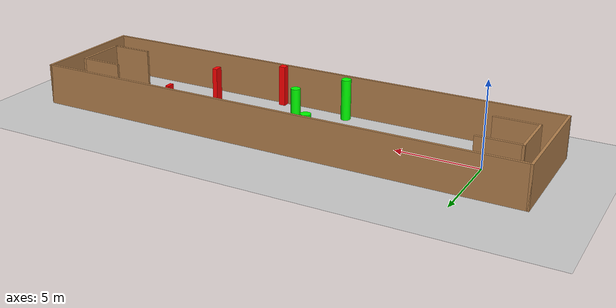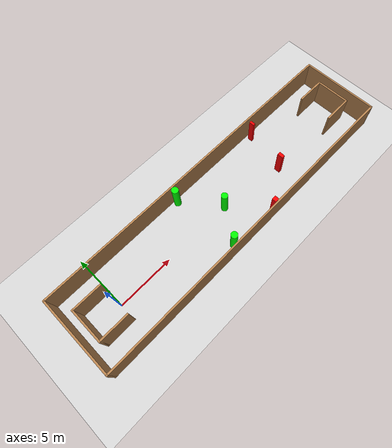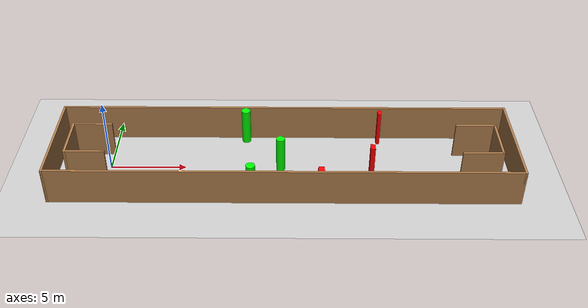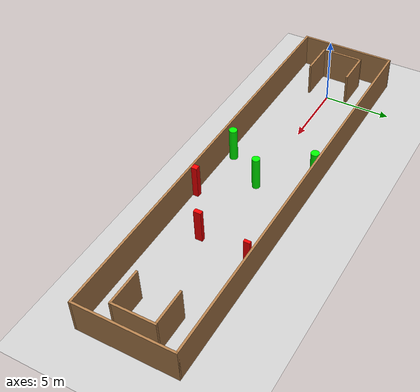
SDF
<sdf version="1.7">
 <world name="default">
  <light name="sun" type="directional">
   <pose>0 0 10 0 -0 0</pose>
   <diffuse>0.8 0.8 0.8 1</diffuse>
   <specular>0.2 0.2 0.2 1</specular>
   <attenuation>
    <range>1000</range>
    <constant>0.9</constant>
    <linear>0.01</linear>
    <quadratic>0.001</quadratic>
   </attenuation>
   <direction>-0.5 0.1 -0.9</direction>
   <spot><inner_angle>0</inner_angle><outer_angle>0</outer_angle><falloff>0</falloff></spot>
  </light>
  <model name="ground_plane">
   <static>1</static>
   <link name="link">
    <collision name="collision">
     <geometry><plane><normal>0 0 1</normal><size>100 100</size></plane></geometry>
     <surface>
      <contact><collide_bitmask>65535</collide_bitmask></contact>
      <friction><ode><mu>100</mu><mu2>50</mu2></ode></friction>
     </surface>
    </collision>
    <visual name="visual">
     <cast_shadows>0</cast_shadows>
     <geometry><plane><normal>0 0 1</normal><size>100 100</size></plane></geometry>
     <material>
      <script><uri>file://media/materials/scripts/gazebo.material</uri><name>Gazebo/Grey</name></script>
     </material>
    </visual>
   </link>
  </model>
  <gravity>0 0 -9.8</gravity>
  <magnetic_field>6e-06 2.3e-05 -4.2e-05</magnetic_field>
  <atmosphere type="adiabatic"/>
  <physics type="ode">
   <max_step_size>0.001</max_step_size>
   <real_time_factor>1</real_time_factor>
   <real_time_update_rate>1000</real_time_update_rate>
  </physics>
  <scene><ambient>0.4 0.4 0.4 1</ambient><background>0.7 0.7 0.7 1</background><shadows>1</shadows></scene>
  <spherical_coordinates>
   <surface_model>EARTH_WGS84</surface_model>
   <latitude_deg>0</latitude_deg>
   <longitude_deg>0</longitude_deg>
   <elevation>0</elevation>
   <heading_deg>0</heading_deg>
  </spherical_coordinates>
  <model name="my_base_walls">
   <link name="Wall_0">
    <collision name="Wall_0_Collision">
     <geometry><box><size>7.15 0.15 2.5</size></box></geometry>
     <pose>0 0 1.25 0 -0 0</pose>
    </collision>
    <visual name="Wall_0_Visual">
     <pose>0 0 1.25 0 -0 0</pose>
     <geometry><box><size>7.15 0.15 2.5</size></box></geometry>
     <material>
      <script><uri>file://media/materials/scripts/gazebo.material</uri><name>Gazebo/Wood</name></script>
      <ambient>1 1 1 1</ambient>
     </material>
     <meta><layer>0</layer></meta>
    </visual>
    <pose>-15 0 0 0 -0 1.5708</pose>
   </link>
   <link name="Wall_10">
    <collision name="Wall_10_Collision">
     <geometry><box><size>2.65 0.15 2.5</size></box></geometry>
     <pose>0 0 1.25 0 -0 0</pose>
    </collision>
    <visual name="Wall_10_Visual">
     <pose>0 0 1.25 0 -0 0</pose>
     <geometry><box><size>2.65 0.15 2.5</size></box></geometry>
     <material>
      <script><uri>file://media/materials/scripts/gazebo.material</uri><name>Gazebo/Wood</name></script>
      <ambient>1 1 1 1</ambient>
     </material>
     <meta><layer>0</layer></meta>
    </visual>
    <pose>-12.75 -1.5 0 0 -0 0</pose>
   </link>
   <link name="Wall_12">
    <collision name="Wall_12_Collision">
     <geometry><box><size>2.65 0.15 2.5</size></box></geometry>
     <pose>0 0 1.25 0 -0 0</pose>
    </collision>
    <visual name="Wall_12_Visual">
     <pose>0 0 1.25 0 -0 0</pose>
     <geometry><box><size>2.65 0.15 2.5</size></box></geometry>
     <material>
      <script><uri>file://media/materials/scripts/gazebo.material</uri><name>Gazebo/Wood</name></script>
      <ambient>1 1 1 1</ambient>
     </material>
     <meta><layer>0</layer></meta>
    </visual>
    <pose>-12.75 1.5 0 0 -0 0</pose>
   </link>
   <link name="Wall_14">
    <collision name="Wall_14_Collision">
     <geometry><box><size>3.15 0.15 2.5</size></box></geometry>
     <pose>0 0 1.25 0 -0 0</pose>
    </collision>
    <visual name="Wall_14_Visual">
     <pose>0 0 1.25 0 -0 0</pose>
     <geometry><box><size>3.15 0.15 2.5</size></box></geometry>
     <material>
      <script><uri>file://media/materials/scripts/gazebo.material</uri><name>Gazebo/Wood</name></script>
      <ambient>1 1 1 1</ambient>
     </material>
     <meta><layer>0</layer></meta>
    </visual>
    <pose>14 0 0 0 -0 -1.5708</pose>
   </link>
   <link name="Wall_15">
    <collision name="Wall_15_Collision">
     <geometry><box><size>2.65 0.15 2.5</size></box></geometry>
     <pose>0 0 1.25 0 -0 0</pose>
    </collision>
    <visual name="Wall_15_Visual">
     <pose>0 0 1.25 0 -0 0</pose>
     <geometry><box><size>2.65 0.15 2.5</size></box></geometry>
     <material>
      <script><uri>file://media/materials/scripts/gazebo.material</uri><name>Gazebo/Wood</name></script>
      <ambient>1 1 1 1</ambient>
     </material>
     <meta><layer>0</layer></meta>
    </visual>
    <pose>12.75 -1.5 0 0 -0 3.14159</pose>
   </link>
   <link name="Wall_17">
    <collision name="Wall_17_Collision">
     <geometry><box><size>2.65 0.15 2.5</size></box></geometry>
     <pose>0 0 1.25 0 -0 0</pose>
    </collision>
    <visual name="Wall_17_Visual">
     <pose>0 0 1.25 0 -0 0</pose>
     <geometry><box><size>2.65 0.15 2.5</size></box></geometry>
     <material>
      <script><uri>file://media/materials/scripts/gazebo.material</uri><name>Gazebo/Wood</name></script>
      <ambient>1 1 1 1</ambient>
     </material>
     <meta><layer>0</layer></meta>
    </visual>
    <pose>12.75 1.5 0 0 -0 3.14159</pose>
   </link>
   <link name="Wall_2">
    <collision name="Wall_2_Collision">
     <geometry><box><size>30.15 0.15 2.5</size></box></geometry>
     <pose>0 0 1.25 0 -0 0</pose>
    </collision>
    <visual name="Wall_2_Visual">
     <pose>0 0 1.25 0 -0 0</pose>
     <geometry><box><size>30.15 0.15 2.5</size></box></geometry>
     <material>
      <script><uri>file://media/materials/scripts/gazebo.material</uri><name>Gazebo/Wood</name></script>
      <ambient>1 1 1 1</ambient>
     </material>
     <meta><layer>0</layer></meta>
    </visual>
    <pose>-0 -3.5 0 0 -0 0</pose>
   </link>
   <link name="Wall_4">
    <collision name="Wall_4_Collision">
     <geometry><box><size>30.15 0.15 2.5</size></box></geometry>
     <pose>0 0 1.25 0 -0 0</pose>
    </collision>
    <visual name="Wall_4_Visual">
     <pose>0 0 1.25 0 -0 0</pose>
     <geometry><box><size>30.15 0.15 2.5</size></box></geometry>
     <material>
      <script><uri>file://media/materials/scripts/gazebo.material</uri><name>Gazebo/Wood</name></script>
      <ambient>1 1 1 1</ambient>
     </material>
     <meta><layer>0</layer></meta>
    </visual>
    <pose>-0 3.5 0 0 -0 0</pose>
   </link>
   <link name="Wall_6">
    <collision name="Wall_6_Collision">
     <geometry><box><size>7.15 0.15 2.5</size></box></geometry>
     <pose>0 0 1.25 0 -0 0</pose>
    </collision>
    <visual name="Wall_6_Visual">
     <pose>0 0 1.25 0 -0 0</pose>
     <geometry><box><size>7.15 0.15 2.5</size></box></geometry>
     <material>
      <script><uri>file://media/materials/scripts/gazebo.material</uri><name>Gazebo/Wood</name></script>
      <ambient>1 1 1 1</ambient>
     </material>
     <meta><layer>0</layer></meta>
    </visual>
    <pose>15 0 0 0 -0 -1.5708</pose>
   </link>
   <link name="Wall_9">
    <collision name="Wall_9_Collision">
     <geometry><box><size>3.15 0.15 2.5</size></box></geometry>
     <pose>0 0 1.25 0 -0 0</pose>
    </collision>
    <visual name="Wall_9_Visual">
     <pose>0 0 1.25 0 -0 0</pose>
     <geometry><box><size>3.15 0.15 2.5</size></box></geometry>
     <material>
      <script><uri>file://media/materials/scripts/gazebo.material</uri><name>Gazebo/Wood</name></script>
      <ambient>1 1 1 1</ambient>
     </material>
     <meta><layer>0</layer></meta>
    </visual>
    <pose>-14 0 0 0 -0 -1.5708</pose>
   </link>
   <static>1</static>
   <pose>11.5 0 0 0 -0 0</pose>
  </model>
  <model name="cylinder1">
   <static>1</static>
   <link name="link">
    <inertial>
     <mass>1</mass>
     <inertia><ixx>0.5</ixx><ixy>0</ixy><ixz>0</ixz><iyy>0.5</iyy><iyz>0</iyz><izz>1</izz></inertia>
    </inertial>
    <collision name="collision">
     <geometry><cylinder><radius>0.29675018924743246</radius><length>2.5</length></cylinder></geometry>
    </collision>
    <visual name="visual">
     <geometry><cylinder><radius>0.29675018924743246</radius><length>2.5</length></cylinder></geometry>
     <material>
      <ambient>0 1 0 1</ambient>
      <diffuse>0 1 0 1</diffuse>
      <specular>0.1 0.1 0.1 1</specular>
      <emissive>0 0 0 0</emissive>
     </material>
    </visual>
   </link>
   <pose>9.428274528383762 -2.905852702419969 1.25 0 0 0</pose>
  </model>
  <model name="cylinder2">
   <static>1</static>
   <link name="link">
    <inertial>
     <mass>1</mass>
     <inertia><ixx>0.5</ixx><ixy>0</ixy><ixz>0</ixz><iyy>0.5</iyy><iyz>0</iyz><izz>1</izz></inertia>
    </inertial>
    <collision name="collision">
     <geometry><cylinder><radius>0.2825780371505673</radius><length>2.5</length></cylinder></geometry>
    </collision>
    <visual name="visual">
     <geometry><cylinder><radius>0.2825780371505673</radius><length>2.5</length></cylinder></geometry>
     <material>
      <ambient>0 1 0 1</ambient>
      <diffuse>0 1 0 1</diffuse>
      <specular>0.1 0.1 0.1 1</specular>
      <emissive>0 0 0 0</emissive>
     </material>
    </visual>
   </link>
   <pose>11.29337349160811 -0.09944887394022439 1.25 0 0 0</pose>
  </model>
  <model name="cylinder3">
   <static>1</static>
   <link name="link">
    <inertial>
     <mass>1</mass>
     <inertia><ixx>0.5</ixx><ixy>0</ixy><ixz>0</ixz><iyy>0.5</iyy><iyz>0</iyz><izz>1</izz></inertia>
    </inertial>
    <collision name="collision">
     <geometry><cylinder><radius>0.2984562023777172</radius><length>2.5</length></cylinder></geometry>
    </collision>
    <visual name="visual">
     <geometry><cylinder><radius>0.2984562023777172</radius><length>2.5</length></cylinder></geometry>
     <material>
      <ambient>0 1 0 1</ambient>
      <diffuse>0 1 0 1</diffuse>
      <specular>0.1 0.1 0.1 1</specular>
      <emissive>0 0 0 0</emissive>
     </material>
    </visual>
   </link>
   <pose>8.91303866720232 3.103316467322485 1.25 0 0 0</pose>
  </model>
  <model name="box1">
   <static>1</static>
   <link name="link">
    <inertial>
     <mass>1</mass>
     <inertia><ixx>0.083</ixx><ixy>0</ixy><ixz>0</ixz><iyy>0.083</iyy><iyz>0</iyz><izz>0.083</izz></inertia>
    </inertial>
    <collision name="collision">
     <geometry><box><size>0.3914916985497451 0.4068887596777495 2.5</size></box></geometry>
    </collision>
    <visual name="visual">
     <geometry><box><size>0.3914916985497451 0.4068887596777495 2.5</size></box></geometry>
     <material>
      <ambient>1 0 0 1</ambient>
      <diffuse>1 0 0 1</diffuse>
      <specular>0.1 0.1 0.1 1</specular>
      <emissive>0 0 0 0</emissive>
     </material>
    </visual>
    <sensor name="my_contact" type="contact">
     <contact><collision>box_collision</collision><topic>__default_topic__</topic></contact>
    </sensor>
   </link>
   <pose>13.869829982650243 -3.215149386870178 1.25 0 0 0</pose>
  </model>
  <model name="box2">
   <static>1</static>
   <link name="link">
    <inertial>
     <mass>1</mass>
     <inertia><ixx>0.083</ixx><ixy>0</ixy><ixz>0</ixz><iyy>0.083</iyy><iyz>0</iyz><izz>0.083</izz></inertia>
    </inertial>
    <collision name="collision">
     <geometry><box><size>0.29725452159716603 0.5285102173408136 2.5</size></box></geometry>
    </collision>
    <visual name="visual">
     <geometry><box><size>0.29725452159716603 0.5285102173408136 2.5</size></box></geometry>
     <material>
      <ambient>1 0 0 1</ambient>
      <diffuse>1 0 0 1</diffuse>
      <specular>0.1 0.1 0.1 1</specular>
      <emissive>0 0 0 0</emissive>
     </material>
    </visual>
    <sensor name="my_contact" type="contact">
     <contact><collision>box_collision</collision><topic>__default_topic__</topic></contact>
    </sensor>
   </link>
   <pose>17.244399990794467 -0.9235535745099712 1.25 0 0 0</pose>
  </model>
  <model name="box3">
   <static>1</static>
   <link name="link">
    <inertial>
     <mass>1</mass>
     <inertia><ixx>0.083</ixx><ixy>0</ixy><ixz>0</ixz><iyy>0.083</iyy><iyz>0</iyz><izz>0.083</izz></inertia>
    </inertial>
    <collision name="collision">
     <geometry><box><size>0.22405065923778733 0.45115596904865946 2.5</size></box></geometry>
    </collision>
    <visual name="visual">
     <geometry><box><size>0.22405065923778733 0.45115596904865946 2.5</size></box></geometry>
     <material>
      <ambient>1 0 0 1</ambient>
      <diffuse>1 0 0 1</diffuse>
      <specular>0.1 0.1 0.1 1</specular>
      <emissive>0 0 0 0</emissive>
     </material>
    </visual>
    <sensor name="my_contact" type="contact">
     <contact><collision>box_collision</collision><topic>__default_topic__</topic></contact>
    </sensor>
   </link>
   <pose>17.965649538864753 2.9491949498105923 1.25 0 0 0</pose>
  </model>
 </world>
</sdf>
